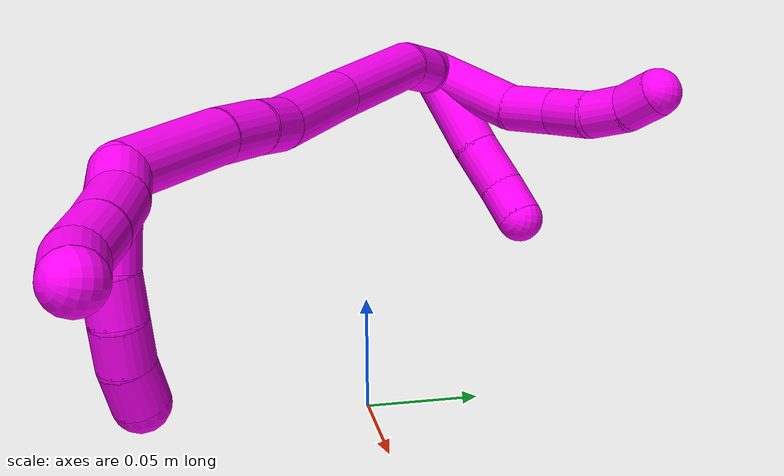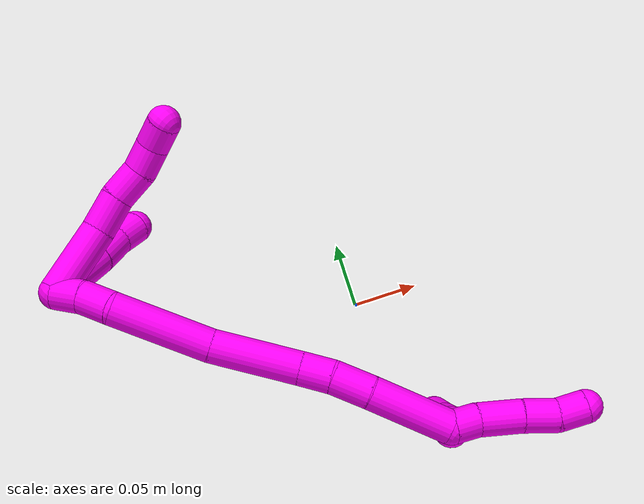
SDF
<sdf version="1.7">
 <world name="default">
  <model name="10">
   <static>0</static>
   <link name="10">
    <collision name="collision-cylinder-e_1_2_8">
     <pose>0.020106 0.017612 -0.006017 -1.90001 0.823985 -1.09709</pose>
     <geometry><cylinder><radius>0.0125</radius><length>0.054795</length></cylinder></geometry>
     <surface>
      <friction><ode><mu>1.16</mu><mu2>1.16</mu2><slip1>0</slip1><slip2>0</slip2></ode></friction>
      <contact><ode><kp>1e+06</kp><kd>1</kd><max_vel>0</max_vel><min_depth>0.001</min_depth></ode></contact>
     </surface>
    </collision>
    <visual name="visual-cylinder-e_1_2_8">
     <pose>0.020106 0.017612 -0.006017 -1.90001 0.823985 -1.09709</pose>
     <geometry><cylinder><radius>0.0125</radius><length>0.054795</length></cylinder></geometry>
     <material><ambient>1 0 0.964706 1</ambient></material>
    </visual>
    <collision name="collision-cylinder-e_2_8_9">
     <pose>0.047354 0.04717 -0.01429 -1.75741 0.53114 -0.634164</pose>
     <geometry><cylinder><radius>0.0125</radius><length>0.0282</length></cylinder></geometry>
     <surface>
      <friction><ode><mu>1.16</mu><mu2>1.16</mu2><slip1>0</slip1><slip2>0</slip2></ode></friction>
      <contact><ode><kp>1e+06</kp><kd>1</kd><max_vel>0</max_vel><min_depth>0.001</min_depth></ode></contact>
     </surface>
    </collision>
    <visual name="visual-cylinder-e_2_8_9">
     <pose>0.047354 0.04717 -0.01429 -1.75741 0.53114 -0.634164</pose>
     <geometry><cylinder><radius>0.0125</radius><length>0.0282</length></cylinder></geometry>
     <material><ambient>1 0 0.964706 1</ambient></material>
    </visual>
    <collision name="collision-cylinder-e_3_9_10">
     <pose>0.061141 0.069664 -0.016053 -1.52416 0.561689 -0.537329</pose>
     <geometry><cylinder><radius>0.0125</radius><length>0.024952</length></cylinder></geometry>
     <surface>
      <friction><ode><mu>1.16</mu><mu2>1.16</mu2><slip1>0</slip1><slip2>0</slip2></ode></friction>
      <contact><ode><kp>1e+06</kp><kd>1</kd><max_vel>0</max_vel><min_depth>0.001</min_depth></ode></contact>
     </surface>
    </collision>
    <visual name="visual-cylinder-e_3_9_10">
     <pose>0.061141 0.069664 -0.016053 -1.52416 0.561689 -0.537329</pose>
     <geometry><cylinder><radius>0.0125</radius><length>0.024952</length></cylinder></geometry>
     <material><ambient>1 0 0.964706 1</ambient></material>
    </visual>
    <collision name="collision-cylinder-e_4_10_11">
     <pose>0.071048 0.090432 -0.016723 -1.68406 0.307112 -0.343342</pose>
     <geometry><cylinder><radius>0.0125</radius><length>0.021581</length></cylinder></geometry>
     <surface>
      <friction><ode><mu>1.16</mu><mu2>1.16</mu2><slip1>0</slip1><slip2>0</slip2></ode></friction>
      <contact><ode><kp>1e+06</kp><kd>1</kd><max_vel>0</max_vel><min_depth>0.001</min_depth></ode></contact>
     </surface>
    </collision>
    <visual name="visual-cylinder-e_4_10_11">
     <pose>0.071048 0.090432 -0.016723 -1.68406 0.307112 -0.343342</pose>
     <geometry><cylinder><radius>0.0125</radius><length>0.021581</length></cylinder></geometry>
     <material><ambient>1 0 0.964706 1</ambient></material>
    </visual>
    <collision name="collision-cylinder-e_5_11_6">
     <pose>0.075152 0.110852 -0.017809 -1.56328 0.082391 -0.081774</pose>
     <geometry><cylinder><radius>0.0125</radius><length>0.020471</length></cylinder></geometry>
     <surface>
      <friction><ode><mu>1.16</mu><mu2>1.16</mu2><slip1>0</slip1><slip2>0</slip2></ode></friction>
      <contact><ode><kp>1e+06</kp><kd>1</kd><max_vel>0</max_vel><min_depth>0.001</min_depth></ode></contact>
     </surface>
    </collision>
    <visual name="visual-cylinder-e_5_11_6">
     <pose>0.075152 0.110852 -0.017809 -1.56328 0.082391 -0.081774</pose>
     <geometry><cylinder><radius>0.0125</radius><length>0.020471</length></cylinder></geometry>
     <material><ambient>1 0 0.964706 1</ambient></material>
    </visual>
    <collision name="collision-cylinder-e_1_2_12">
     <pose>0.025018 0.002938 -0.004501 -2.56336 1.35916 -2.43609</pose>
     <geometry><cylinder><radius>0.0125</radius><length>0.051178</length></cylinder></geometry>
     <surface>
      <friction><ode><mu>1.16</mu><mu2>1.16</mu2><slip1>0</slip1><slip2>0</slip2></ode></friction>
      <contact><ode><kp>1e+06</kp><kd>1</kd><max_vel>0</max_vel><min_depth>0.001</min_depth></ode></contact>
     </surface>
    </collision>
    <visual name="visual-cylinder-e_1_2_12">
     <pose>0.025018 0.002938 -0.004501 -2.56336 1.35916 -2.43609</pose>
     <geometry><cylinder><radius>0.0125</radius><length>0.051178</length></cylinder></geometry>
     <material><ambient>1 0 0.964706 1</ambient></material>
    </visual>
    <collision name="collision-cylinder-e_2_12_13">
     <pose>0.063185 0.007741 -0.012322 -2.62967 1.28891 -2.47138</pose>
     <geometry><cylinder><radius>0.0125</radius><length>0.027377</length></cylinder></geometry>
     <surface>
      <friction><ode><mu>1.16</mu><mu2>1.16</mu2><slip1>0</slip1><slip2>0</slip2></ode></friction>
      <contact><ode><kp>1e+06</kp><kd>1</kd><max_vel>0</max_vel><min_depth>0.001</min_depth></ode></contact>
     </surface>
    </collision>
    <visual name="visual-cylinder-e_2_12_13">
     <pose>0.063185 0.007741 -0.012322 -2.62967 1.28891 -2.47138</pose>
     <geometry><cylinder><radius>0.0125</radius><length>0.027377</length></cylinder></geometry>
     <material><ambient>1 0 0.964706 1</ambient></material>
    </visual>
    <collision name="collision-cylinder-e_3_13_5">
     <pose>0.08678 0.011886 -0.016429 -1.9033 1.3439 -1.68051</pose>
     <geometry><cylinder><radius>0.0125</radius><length>0.021445</length></cylinder></geometry>
     <surface>
      <friction><ode><mu>1.16</mu><mu2>1.16</mu2><slip1>0</slip1><slip2>0</slip2></ode></friction>
      <contact><ode><kp>1e+06</kp><kd>1</kd><max_vel>0</max_vel><min_depth>0.001</min_depth></ode></contact>
     </surface>
    </collision>
    <visual name="visual-cylinder-e_3_13_5">
     <pose>0.08678 0.011886 -0.016429 -1.9033 1.3439 -1.68051</pose>
     <geometry><cylinder><radius>0.0125</radius><length>0.021445</length></cylinder></geometry>
     <material><ambient>1 0 0.964706 1</ambient></material>
    </visual>
    <collision name="collision-cylinder-e_1_2_14">
     <pose>0.003121 0.004285 0.009008 -0.44397 0.303264 -0.06895</pose>
     <geometry><cylinder><radius>0.0125</radius><length>0.020904</length></cylinder></geometry>
     <surface>
      <friction><ode><mu>1.16</mu><mu2>1.16</mu2><slip1>0</slip1><slip2>0</slip2></ode></friction>
      <contact><ode><kp>1e+06</kp><kd>1</kd><max_vel>0</max_vel><min_depth>0.001</min_depth></ode></contact>
     </surface>
    </collision>
    <visual name="visual-cylinder-e_1_2_14">
     <pose>0.003121 0.004285 0.009008 -0.44397 0.303264 -0.06895</pose>
     <geometry><cylinder><radius>0.0125</radius><length>0.020904</length></cylinder></geometry>
     <material><ambient>1 0 0.964706 1</ambient></material>
    </visual>
    <collision name="collision-cylinder-e_2_14_15">
     <pose>0.008433 0.01199 0.029403 -0.291836 0.182156 -0.026843</pose>
     <geometry><cylinder><radius>0.0125</radius><length>0.02418</length></cylinder></geometry>
     <surface>
      <friction><ode><mu>1.16</mu><mu2>1.16</mu2><slip1>0</slip1><slip2>0</slip2></ode></friction>
      <contact><ode><kp>1e+06</kp><kd>1</kd><max_vel>0</max_vel><min_depth>0.001</min_depth></ode></contact>
     </surface>
    </collision>
    <visual name="visual-cylinder-e_2_14_15">
     <pose>0.008433 0.01199 0.029403 -0.291836 0.182156 -0.026843</pose>
     <geometry><cylinder><radius>0.0125</radius><length>0.02418</length></cylinder></geometry>
     <material><ambient>1 0 0.964706 1</ambient></material>
    </visual>
    <collision name="collision-cylinder-e_3_15_16">
     <pose>0.026715 0.019289 0.074324 -0.115136 0.444839 -0.026067</pose>
     <geometry><cylinder><radius>0.0125</radius><length>0.074793</length></cylinder></geometry>
     <surface>
      <friction><ode><mu>1.16</mu><mu2>1.16</mu2><slip1>0</slip1><slip2>0</slip2></ode></friction>
      <contact><ode><kp>1e+06</kp><kd>1</kd><max_vel>0</max_vel><min_depth>0.001</min_depth></ode></contact>
     </surface>
    </collision>
    <visual name="visual-cylinder-e_3_15_16">
     <pose>0.026715 0.019289 0.074324 -0.115136 0.444839 -0.026067</pose>
     <geometry><cylinder><radius>0.0125</radius><length>0.074793</length></cylinder></geometry>
     <material><ambient>1 0 0.964706 1</ambient></material>
    </visual>
    <collision name="collision-cylinder-e_4_16_17">
     <pose>0.057734 0.030355 0.136171 -0.248639 0.472405 -0.060138</pose>
     <geometry><cylinder><radius>0.0125</radius><length>0.065608</length></cylinder></geometry>
     <surface>
      <friction><ode><mu>1.16</mu><mu2>1.16</mu2><slip1>0</slip1><slip2>0</slip2></ode></friction>
      <contact><ode><kp>1e+06</kp><kd>1</kd><max_vel>0</max_vel><min_depth>0.001</min_depth></ode></contact>
     </surface>
    </collision>
    <visual name="visual-cylinder-e_4_16_17">
     <pose>0.057734 0.030355 0.136171 -0.248639 0.472405 -0.060138</pose>
     <geometry><cylinder><radius>0.0125</radius><length>0.065608</length></cylinder></geometry>
     <material><ambient>1 0 0.964706 1</ambient></material>
    </visual>
    <collision name="collision-cylinder-e_5_17_18">
     <pose>0.076626 0.041138 0.17522 -0.323003 0.336844 -0.05539</pose>
     <geometry><cylinder><radius>0.0125</radius><length>0.023993</length></cylinder></geometry>
     <surface>
      <friction><ode><mu>1.16</mu><mu2>1.16</mu2><slip1>0</slip1><slip2>0</slip2></ode></friction>
      <contact><ode><kp>1e+06</kp><kd>1</kd><max_vel>0</max_vel><min_depth>0.001</min_depth></ode></contact>
     </surface>
    </collision>
    <visual name="visual-cylinder-e_5_17_18">
     <pose>0.076626 0.041138 0.17522 -0.323003 0.336844 -0.05539</pose>
     <geometry><cylinder><radius>0.0125</radius><length>0.023993</length></cylinder></geometry>
     <material><ambient>1 0 0.964706 1</ambient></material>
    </visual>
    <collision name="collision-cylinder-e_6_18_19">
     <pose>0.085442 0.046879 0.199426 -0.158109 0.341707 -0.027335</pose>
     <geometry><cylinder><radius>0.0125</radius><length>0.028951</length></cylinder></geometry>
     <surface>
      <friction><ode><mu>1.16</mu><mu2>1.16</mu2><slip1>0</slip1><slip2>0</slip2></ode></friction>
      <contact><ode><kp>1e+06</kp><kd>1</kd><max_vel>0</max_vel><min_depth>0.001</min_depth></ode></contact>
     </surface>
    </collision>
    <visual name="visual-cylinder-e_6_18_19">
     <pose>0.085442 0.046879 0.199426 -0.158109 0.341707 -0.027335</pose>
     <geometry><cylinder><radius>0.0125</radius><length>0.028951</length></cylinder></geometry>
     <material><ambient>1 0 0.964706 1</ambient></material>
    </visual>
    <collision name="collision-cylinder-e_7_19_1">
     <pose>0.10236 0.05139 0.241117 -0.083538 0.402814 -0.017066</pose>
     <geometry><cylinder><radius>0.0125</radius><length>0.061571</length></cylinder></geometry>
     <surface>
      <friction><ode><mu>1.16</mu><mu2>1.16</mu2><slip1>0</slip1><slip2>0</slip2></ode></friction>
      <contact><ode><kp>1e+06</kp><kd>1</kd><max_vel>0</max_vel><min_depth>0.001</min_depth></ode></contact>
     </surface>
    </collision>
    <visual name="visual-cylinder-e_7_19_1">
     <pose>0.10236 0.05139 0.241117 -0.083538 0.402814 -0.017066</pose>
     <geometry><cylinder><radius>0.0125</radius><length>0.061571</length></cylinder></geometry>
     <material><ambient>1 0 0.964706 1</ambient></material>
    </visual>
    <collision name="collision-cylinder-e_1_1_20">
     <pose>0.122603 0.057551 0.27398 -0.685983 0.937839 -0.357954</pose>
     <geometry><cylinder><radius>0.0125</radius><length>0.020276</length></cylinder></geometry>
     <surface>
      <friction><ode><mu>1.16</mu><mu2>1.16</mu2><slip1>0</slip1><slip2>0</slip2></ode></friction>
      <contact><ode><kp>1e+06</kp><kd>1</kd><max_vel>0</max_vel><min_depth>0.001</min_depth></ode></contact>
     </surface>
    </collision>
    <visual name="visual-cylinder-e_1_1_20">
     <pose>0.122603 0.057551 0.27398 -0.685983 0.937839 -0.357954</pose>
     <geometry><cylinder><radius>0.0125</radius><length>0.020276</length></cylinder></geometry>
     <material><ambient>1 0 0.964706 1</ambient></material>
    </visual>
    <collision name="collision-cylinder-e_2_20_21">
     <pose>0.140982 0.068263 0.2894 -0.570215 0.672829 -0.20428</pose>
     <geometry><cylinder><radius>0.0125</radius><length>0.03275</length></cylinder></geometry>
     <surface>
      <friction><ode><mu>1.16</mu><mu2>1.16</mu2><slip1>0</slip1><slip2>0</slip2></ode></friction>
      <contact><ode><kp>1e+06</kp><kd>1</kd><max_vel>0</max_vel><min_depth>0.001</min_depth></ode></contact>
     </surface>
    </collision>
    <visual name="visual-cylinder-e_2_20_21">
     <pose>0.140982 0.068263 0.2894 -0.570215 0.672829 -0.20428</pose>
     <geometry><cylinder><radius>0.0125</radius><length>0.03275</length></cylinder></geometry>
     <material><ambient>1 0 0.964706 1</ambient></material>
    </visual>
    <collision name="collision-cylinder-e_3_21_22">
     <pose>0.159009 0.079852 0.309235 -0.476672 0.654709 -0.164628</pose>
     <geometry><cylinder><radius>0.0125</radius><length>0.025694</length></cylinder></geometry>
     <surface>
      <friction><ode><mu>1.16</mu><mu2>1.16</mu2><slip1>0</slip1><slip2>0</slip2></ode></friction>
      <contact><ode><kp>1e+06</kp><kd>1</kd><max_vel>0</max_vel><min_depth>0.001</min_depth></ode></contact>
     </surface>
    </collision>
    <visual name="visual-cylinder-e_3_21_22">
     <pose>0.159009 0.079852 0.309235 -0.476672 0.654709 -0.164628</pose>
     <geometry><cylinder><radius>0.0125</radius><length>0.025694</length></cylinder></geometry>
     <material><ambient>1 0 0.964706 1</ambient></material>
    </visual>
    <collision name="collision-cylinder-e_4_22_4">
     <pose>0.173568 0.090766 0.323668 -0.859303 0.685481 -0.324125</pose>
     <geometry><cylinder><radius>0.0125</radius><length>0.02128</length></cylinder></geometry>
     <surface>
      <friction><ode><mu>1.16</mu><mu2>1.16</mu2><slip1>0</slip1><slip2>0</slip2></ode></friction>
      <contact><ode><kp>1e+06</kp><kd>1</kd><max_vel>0</max_vel><min_depth>0.001</min_depth></ode></contact>
     </surface>
    </collision>
    <visual name="visual-cylinder-e_4_22_4">
     <pose>0.173568 0.090766 0.323668 -0.859303 0.685481 -0.324125</pose>
     <geometry><cylinder><radius>0.0125</radius><length>0.02128</length></cylinder></geometry>
     <material><ambient>1 0 0.964706 1</ambient></material>
    </visual>
    <collision name="collision-cylinder-e_1_1_23">
     <pose>0.121915 0.047133 0.268973 1.62615 0.846036 0.888254</pose>
     <geometry><cylinder><radius>0.0125</radius><length>0.02</length></cylinder></geometry>
     <surface>
      <friction><ode><mu>1.16</mu><mu2>1.16</mu2><slip1>0</slip1><slip2>0</slip2></ode></friction>
      <contact><ode><kp>1e+06</kp><kd>1</kd><max_vel>0</max_vel><min_depth>0.001</min_depth></ode></contact>
     </surface>
    </collision>
    <visual name="visual-cylinder-e_1_1_23">
     <pose>0.121915 0.047133 0.268973 1.62615 0.846036 0.888254</pose>
     <geometry><cylinder><radius>0.0125</radius><length>0.02</length></cylinder></geometry>
     <material><ambient>1 0 0.964706 1</ambient></material>
    </visual>
    <collision name="collision-cylinder-e_2_23_24">
     <pose>0.138259 0.035932 0.267859 1.73237 1.08797 1.23672</pose>
     <geometry><cylinder><radius>0.0125</radius><length>0.02</length></cylinder></geometry>
     <surface>
      <friction><ode><mu>1.16</mu><mu2>1.16</mu2><slip1>0</slip1><slip2>0</slip2></ode></friction>
      <contact><ode><kp>1e+06</kp><kd>1</kd><max_vel>0</max_vel><min_depth>0.001</min_depth></ode></contact>
     </surface>
    </collision>
    <visual name="visual-cylinder-e_2_23_24">
     <pose>0.138259 0.035932 0.267859 1.73237 1.08797 1.23672</pose>
     <geometry><cylinder><radius>0.0125</radius><length>0.02</length></cylinder></geometry>
     <material><ambient>1 0 0.964706 1</ambient></material>
    </visual>
    <collision name="collision-cylinder-e_3_24_25">
     <pose>0.15507 0.026285 0.263783 2.1523 0.919787 1.48569</pose>
     <geometry><cylinder><radius>0.0125</radius><length>0.02</length></cylinder></geometry>
     <surface>
      <friction><ode><mu>1.16</mu><mu2>1.16</mu2><slip1>0</slip1><slip2>0</slip2></ode></friction>
      <contact><ode><kp>1e+06</kp><kd>1</kd><max_vel>0</max_vel><min_depth>0.001</min_depth></ode></contact>
     </surface>
    </collision>
    <visual name="visual-cylinder-e_3_24_25">
     <pose>0.15507 0.026285 0.263783 2.1523 0.919787 1.48569</pose>
     <geometry><cylinder><radius>0.0125</radius><length>0.02</length></cylinder></geometry>
     <material><ambient>1 0 0.964706 1</ambient></material>
    </visual>
    <collision name="collision-cylinder-e_4_25_26">
     <pose>0.169895 0.015236 0.256334 2.17377 0.757297 1.29587</pose>
     <geometry><cylinder><radius>0.0125</radius><length>0.02</length></cylinder></geometry>
     <surface>
      <friction><ode><mu>1.16</mu><mu2>1.16</mu2><slip1>0</slip1><slip2>0</slip2></ode></friction>
      <contact><ode><kp>1e+06</kp><kd>1</kd><max_vel>0</max_vel><min_depth>0.001</min_depth></ode></contact>
     </surface>
    </collision>
    <visual name="visual-cylinder-e_4_25_26">
     <pose>0.169895 0.015236 0.256334 2.17377 0.757297 1.29587</pose>
     <geometry><cylinder><radius>0.0125</radius><length>0.02</length></cylinder></geometry>
     <material><ambient>1 0 0.964706 1</ambient></material>
    </visual>
    <collision name="collision-cylinder-e_5_26_3">
     <pose>0.183071 0.003858 0.246632 2.37337 0.682418 1.44168</pose>
     <geometry><cylinder><radius>0.0125</radius><length>0.02</length></cylinder></geometry>
     <surface>
      <friction><ode><mu>1.16</mu><mu2>1.16</mu2><slip1>0</slip1><slip2>0</slip2></ode></friction>
      <contact><ode><kp>1e+06</kp><kd>1</kd><max_vel>0</max_vel><min_depth>0.001</min_depth></ode></contact>
     </surface>
    </collision>
    <visual name="visual-cylinder-e_5_26_3">
     <pose>0.183071 0.003858 0.246632 2.37337 0.682418 1.44168</pose>
     <geometry><cylinder><radius>0.0125</radius><length>0.02</length></cylinder></geometry>
     <material><ambient>1 0 0.964706 1</ambient></material>
    </visual>
    <collision name="collision-sphere-3">
     <pose>0.189378 -0.001534 0.241051 0 -0 0</pose>
     <geometry><sphere><radius>0.0125</radius></sphere></geometry>
     <surface>
      <friction><ode><mu>1.16</mu><mu2>1.16</mu2><slip1>0</slip1><slip2>0</slip2></ode></friction>
      <contact><ode><kp>1e+06</kp><kd>1</kd><max_vel>0</max_vel><min_depth>0.001</min_depth></ode></contact>
     </surface>
    </collision>
    <visual name="visual-sphere-3">
     <pose>0.189378 -0.001534 0.241051 0 -0 0</pose>
     <geometry><sphere><radius>0.0125</radius></sphere></geometry>
     <material><ambient>1 0 0.964706 1</ambient></material>
    </visual>
    <collision name="collision-sphere-26">
     <pose>0.176764 0.009251 0.252213 0 -0 0</pose>
     <geometry><sphere><radius>0.0125</radius></sphere></geometry>
     <surface>
      <friction><ode><mu>1.16</mu><mu2>1.16</mu2><slip1>0</slip1><slip2>0</slip2></ode></friction>
      <contact><ode><kp>1e+06</kp><kd>1</kd><max_vel>0</max_vel><min_depth>0.001</min_depth></ode></contact>
     </surface>
    </collision>
    <visual name="visual-sphere-26">
     <pose>0.176764 0.009251 0.252213 0 -0 0</pose>
     <geometry><sphere><radius>0.0125</radius></sphere></geometry>
     <material><ambient>1 0 0.964706 1</ambient></material>
    </visual>
    <collision name="collision-sphere-25">
     <pose>0.163025 0.021222 0.260455 0 -0 0</pose>
     <geometry><sphere><radius>0.0125</radius></sphere></geometry>
     <surface>
      <friction><ode><mu>1.16</mu><mu2>1.16</mu2><slip1>0</slip1><slip2>0</slip2></ode></friction>
      <contact><ode><kp>1e+06</kp><kd>1</kd><max_vel>0</max_vel><min_depth>0.001</min_depth></ode></contact>
     </surface>
    </collision>
    <visual name="visual-sphere-25">
     <pose>0.163025 0.021222 0.260455 0 -0 0</pose>
     <geometry><sphere><radius>0.0125</radius></sphere></geometry>
     <material><ambient>1 0 0.964706 1</ambient></material>
    </visual>
    <collision name="collision-sphere-24">
     <pose>0.147116 0.031349 0.267112 0 -0 0</pose>
     <geometry><sphere><radius>0.0125</radius></sphere></geometry>
     <surface>
      <friction><ode><mu>1.16</mu><mu2>1.16</mu2><slip1>0</slip1><slip2>0</slip2></ode></friction>
      <contact><ode><kp>1e+06</kp><kd>1</kd><max_vel>0</max_vel><min_depth>0.001</min_depth></ode></contact>
     </surface>
    </collision>
    <visual name="visual-sphere-24">
     <pose>0.147116 0.031349 0.267112 0 -0 0</pose>
     <geometry><sphere><radius>0.0125</radius></sphere></geometry>
     <material><ambient>1 0 0.964706 1</ambient></material>
    </visual>
    <collision name="collision-sphere-23">
     <pose>0.129402 0.040514 0.268606 0 -0 0</pose>
     <geometry><sphere><radius>0.0125</radius></sphere></geometry>
     <surface>
      <friction><ode><mu>1.16</mu><mu2>1.16</mu2><slip1>0</slip1><slip2>0</slip2></ode></friction>
      <contact><ode><kp>1e+06</kp><kd>1</kd><max_vel>0</max_vel><min_depth>0.001</min_depth></ode></contact>
     </surface>
    </collision>
    <visual name="visual-sphere-23">
     <pose>0.129402 0.040514 0.268606 0 -0 0</pose>
     <geometry><sphere><radius>0.0125</radius></sphere></geometry>
     <material><ambient>1 0 0.964706 1</ambient></material>
    </visual>
    <collision name="collision-sphere-4">
     <pose>0.180304 0.097004 0.329046 0 -0 0</pose>
     <geometry><sphere><radius>0.0125</radius></sphere></geometry>
     <surface>
      <friction><ode><mu>1.16</mu><mu2>1.16</mu2><slip1>0</slip1><slip2>0</slip2></ode></friction>
      <contact><ode><kp>1e+06</kp><kd>1</kd><max_vel>0</max_vel><min_depth>0.001</min_depth></ode></contact>
     </surface>
    </collision>
    <visual name="visual-sphere-4">
     <pose>0.180304 0.097004 0.329046 0 -0 0</pose>
     <geometry><sphere><radius>0.0125</radius></sphere></geometry>
     <material><ambient>1 0 0.964706 1</ambient></material>
    </visual>
    <collision name="collision-sphere-22">
     <pose>0.166832 0.084527 0.31829 0 -0 0</pose>
     <geometry><sphere><radius>0.0125</radius></sphere></geometry>
     <surface>
      <friction><ode><mu>1.16</mu><mu2>1.16</mu2><slip1>0</slip1><slip2>0</slip2></ode></friction>
      <contact><ode><kp>1e+06</kp><kd>1</kd><max_vel>0</max_vel><min_depth>0.001</min_depth></ode></contact>
     </surface>
    </collision>
    <visual name="visual-sphere-22">
     <pose>0.166832 0.084527 0.31829 0 -0 0</pose>
     <geometry><sphere><radius>0.0125</radius></sphere></geometry>
     <material><ambient>1 0 0.964706 1</ambient></material>
    </visual>
    <collision name="collision-sphere-21">
     <pose>0.151186 0.075176 0.30018 0 -0 0</pose>
     <geometry><sphere><radius>0.0125</radius></sphere></geometry>
     <surface>
      <friction><ode><mu>1.16</mu><mu2>1.16</mu2><slip1>0</slip1><slip2>0</slip2></ode></friction>
      <contact><ode><kp>1e+06</kp><kd>1</kd><max_vel>0</max_vel><min_depth>0.001</min_depth></ode></contact>
     </surface>
    </collision>
    <visual name="visual-sphere-21">
     <pose>0.151186 0.075176 0.30018 0 -0 0</pose>
     <geometry><sphere><radius>0.0125</radius></sphere></geometry>
     <material><ambient>1 0 0.964706 1</ambient></material>
    </visual>
    <collision name="collision-sphere-20">
     <pose>0.130777 0.06135 0.27862 0 -0 0</pose>
     <geometry><sphere><radius>0.0125</radius></sphere></geometry>
     <surface>
      <friction><ode><mu>1.16</mu><mu2>1.16</mu2><slip1>0</slip1><slip2>0</slip2></ode></friction>
      <contact><ode><kp>1e+06</kp><kd>1</kd><max_vel>0</max_vel><min_depth>0.001</min_depth></ode></contact>
     </surface>
    </collision>
    <visual name="visual-sphere-20">
     <pose>0.130777 0.06135 0.27862 0 -0 0</pose>
     <geometry><sphere><radius>0.0125</radius></sphere></geometry>
     <material><ambient>1 0 0.964706 1</ambient></material>
    </visual>
    <collision name="collision-sphere-6">
     <pose>0.075994 0.121053 -0.017732 0 -0 0</pose>
     <geometry><sphere><radius>0.0125</radius></sphere></geometry>
     <surface>
      <friction><ode><mu>1.16</mu><mu2>1.16</mu2><slip1>0</slip1><slip2>0</slip2></ode></friction>
      <contact><ode><kp>1e+06</kp><kd>1</kd><max_vel>0</max_vel><min_depth>0.001</min_depth></ode></contact>
     </surface>
    </collision>
    <visual name="visual-sphere-6">
     <pose>0.075994 0.121053 -0.017732 0 -0 0</pose>
     <geometry><sphere><radius>0.0125</radius></sphere></geometry>
     <material><ambient>1 0 0.964706 1</ambient></material>
    </visual>
    <collision name="collision-sphere-11">
     <pose>0.07431 0.100651 -0.017886 0 -0 0</pose>
     <geometry><sphere><radius>0.0125</radius></sphere></geometry>
     <surface>
      <friction><ode><mu>1.16</mu><mu2>1.16</mu2><slip1>0</slip1><slip2>0</slip2></ode></friction>
      <contact><ode><kp>1e+06</kp><kd>1</kd><max_vel>0</max_vel><min_depth>0.001</min_depth></ode></contact>
     </surface>
    </collision>
    <visual name="visual-sphere-11">
     <pose>0.07431 0.100651 -0.017886 0 -0 0</pose>
     <geometry><sphere><radius>0.0125</radius></sphere></geometry>
     <material><ambient>1 0 0.964706 1</ambient></material>
    </visual>
    <collision name="collision-sphere-10">
     <pose>0.067786 0.080212 -0.015561 0 -0 0</pose>
     <geometry><sphere><radius>0.0125</radius></sphere></geometry>
     <surface>
      <friction><ode><mu>1.16</mu><mu2>1.16</mu2><slip1>0</slip1><slip2>0</slip2></ode></friction>
      <contact><ode><kp>1e+06</kp><kd>1</kd><max_vel>0</max_vel><min_depth>0.001</min_depth></ode></contact>
     </surface>
    </collision>
    <visual name="visual-sphere-10">
     <pose>0.067786 0.080212 -0.015561 0 -0 0</pose>
     <geometry><sphere><radius>0.0125</radius></sphere></geometry>
     <material><ambient>1 0 0.964706 1</ambient></material>
    </visual>
    <collision name="collision-sphere-9">
     <pose>0.054496 0.059116 -0.016545 0 -0 0</pose>
     <geometry><sphere><radius>0.0125</radius></sphere></geometry>
     <surface>
      <friction><ode><mu>1.16</mu><mu2>1.16</mu2><slip1>0</slip1><slip2>0</slip2></ode></friction>
      <contact><ode><kp>1e+06</kp><kd>1</kd><max_vel>0</max_vel><min_depth>0.001</min_depth></ode></contact>
     </surface>
    </collision>
    <visual name="visual-sphere-9">
     <pose>0.054496 0.059116 -0.016545 0 -0 0</pose>
     <geometry><sphere><radius>0.0125</radius></sphere></geometry>
     <material><ambient>1 0 0.964706 1</ambient></material>
    </visual>
    <collision name="collision-sphere-2">
     <geometry><sphere><radius>0.0125</radius></sphere></geometry>
     <surface>
      <friction><ode><mu>1.16</mu><mu2>1.16</mu2><slip1>0</slip1><slip2>0</slip2></ode></friction>
      <contact><ode><kp>1e+06</kp><kd>1</kd><max_vel>0</max_vel><min_depth>0.001</min_depth></ode></contact>
     </surface>
    </collision>
    <visual name="visual-sphere-2">
     <geometry><sphere><radius>0.0125</radius></sphere></geometry>
     <material><ambient>1 0 0.964706 1</ambient></material>
    </visual>
    <collision name="collision-sphere-19">
     <pose>0.090292 0.049026 0.212894 0 -0 0</pose>
     <geometry><sphere><radius>0.0125</radius></sphere></geometry>
     <surface>
      <friction><ode><mu>1.16</mu><mu2>1.16</mu2><slip1>0</slip1><slip2>0</slip2></ode></friction>
      <contact><ode><kp>1e+06</kp><kd>1</kd><max_vel>0</max_vel><min_depth>0.001</min_depth></ode></contact>
     </surface>
    </collision>
    <visual name="visual-sphere-19">
     <pose>0.090292 0.049026 0.212894 0 -0 0</pose>
     <geometry><sphere><radius>0.0125</radius></sphere></geometry>
     <material><ambient>1 0 0.964706 1</ambient></material>
    </visual>
    <collision name="collision-sphere-8">
     <pose>0.040212 0.035223 -0.012034 0 -0 0</pose>
     <geometry><sphere><radius>0.0125</radius></sphere></geometry>
     <surface>
      <friction><ode><mu>1.16</mu><mu2>1.16</mu2><slip1>0</slip1><slip2>0</slip2></ode></friction>
      <contact><ode><kp>1e+06</kp><kd>1</kd><max_vel>0</max_vel><min_depth>0.001</min_depth></ode></contact>
     </surface>
    </collision>
    <visual name="visual-sphere-8">
     <pose>0.040212 0.035223 -0.012034 0 -0 0</pose>
     <geometry><sphere><radius>0.0125</radius></sphere></geometry>
     <material><ambient>1 0 0.964706 1</ambient></material>
    </visual>
    <collision name="collision-sphere-12">
     <pose>0.050036 0.005876 -0.009003 0 -0 0</pose>
     <geometry><sphere><radius>0.0125</radius></sphere></geometry>
     <surface>
      <friction><ode><mu>1.16</mu><mu2>1.16</mu2><slip1>0</slip1><slip2>0</slip2></ode></friction>
      <contact><ode><kp>1e+06</kp><kd>1</kd><max_vel>0</max_vel><min_depth>0.001</min_depth></ode></contact>
     </surface>
    </collision>
    <visual name="visual-sphere-12">
     <pose>0.050036 0.005876 -0.009003 0 -0 0</pose>
     <geometry><sphere><radius>0.0125</radius></sphere></geometry>
     <material><ambient>1 0 0.964706 1</ambient></material>
    </visual>
    <collision name="collision-sphere-13">
     <pose>0.076333 0.009606 -0.015642 0 -0 0</pose>
     <geometry><sphere><radius>0.0125</radius></sphere></geometry>
     <surface>
      <friction><ode><mu>1.16</mu><mu2>1.16</mu2><slip1>0</slip1><slip2>0</slip2></ode></friction>
      <contact><ode><kp>1e+06</kp><kd>1</kd><max_vel>0</max_vel><min_depth>0.001</min_depth></ode></contact>
     </surface>
    </collision>
    <visual name="visual-sphere-13">
     <pose>0.076333 0.009606 -0.015642 0 -0 0</pose>
     <geometry><sphere><radius>0.0125</radius></sphere></geometry>
     <material><ambient>1 0 0.964706 1</ambient></material>
    </visual>
    <collision name="collision-sphere-5">
     <pose>0.097228 0.014166 -0.017217 0 -0 0</pose>
     <geometry><sphere><radius>0.0125</radius></sphere></geometry>
     <surface>
      <friction><ode><mu>1.16</mu><mu2>1.16</mu2><slip1>0</slip1><slip2>0</slip2></ode></friction>
      <contact><ode><kp>1e+06</kp><kd>1</kd><max_vel>0</max_vel><min_depth>0.001</min_depth></ode></contact>
     </surface>
    </collision>
    <visual name="visual-sphere-5">
     <pose>0.097228 0.014166 -0.017217 0 -0 0</pose>
     <geometry><sphere><radius>0.0125</radius></sphere></geometry>
     <material><ambient>1 0 0.964706 1</ambient></material>
    </visual>
    <collision name="collision-sphere-14">
     <pose>0.006243 0.008569 0.018016 0 -0 0</pose>
     <geometry><sphere><radius>0.0125</radius></sphere></geometry>
     <surface>
      <friction><ode><mu>1.16</mu><mu2>1.16</mu2><slip1>0</slip1><slip2>0</slip2></ode></friction>
      <contact><ode><kp>1e+06</kp><kd>1</kd><max_vel>0</max_vel><min_depth>0.001</min_depth></ode></contact>
     </surface>
    </collision>
    <visual name="visual-sphere-14">
     <pose>0.006243 0.008569 0.018016 0 -0 0</pose>
     <geometry><sphere><radius>0.0125</radius></sphere></geometry>
     <material><ambient>1 0 0.964706 1</ambient></material>
    </visual>
    <collision name="collision-sphere-15">
     <pose>0.010623 0.015411 0.04079 0 -0 0</pose>
     <geometry><sphere><radius>0.0125</radius></sphere></geometry>
     <surface>
      <friction><ode><mu>1.16</mu><mu2>1.16</mu2><slip1>0</slip1><slip2>0</slip2></ode></friction>
      <contact><ode><kp>1e+06</kp><kd>1</kd><max_vel>0</max_vel><min_depth>0.001</min_depth></ode></contact>
     </surface>
    </collision>
    <visual name="visual-sphere-15">
     <pose>0.010623 0.015411 0.04079 0 -0 0</pose>
     <geometry><sphere><radius>0.0125</radius></sphere></geometry>
     <material><ambient>1 0 0.964706 1</ambient></material>
    </visual>
    <collision name="collision-sphere-16">
     <pose>0.042807 0.023167 0.107858 0 -0 0</pose>
     <geometry><sphere><radius>0.0125</radius></sphere></geometry>
     <surface>
      <friction><ode><mu>1.16</mu><mu2>1.16</mu2><slip1>0</slip1><slip2>0</slip2></ode></friction>
      <contact><ode><kp>1e+06</kp><kd>1</kd><max_vel>0</max_vel><min_depth>0.001</min_depth></ode></contact>
     </surface>
    </collision>
    <visual name="visual-sphere-16">
     <pose>0.042807 0.023167 0.107858 0 -0 0</pose>
     <geometry><sphere><radius>0.0125</radius></sphere></geometry>
     <material><ambient>1 0 0.964706 1</ambient></material>
    </visual>
    <collision name="collision-sphere-17">
     <pose>0.072661 0.037544 0.164484 0 -0 0</pose>
     <geometry><sphere><radius>0.0125</radius></sphere></geometry>
     <surface>
      <friction><ode><mu>1.16</mu><mu2>1.16</mu2><slip1>0</slip1><slip2>0</slip2></ode></friction>
      <contact><ode><kp>1e+06</kp><kd>1</kd><max_vel>0</max_vel><min_depth>0.001</min_depth></ode></contact>
     </surface>
    </collision>
    <visual name="visual-sphere-17">
     <pose>0.072661 0.037544 0.164484 0 -0 0</pose>
     <geometry><sphere><radius>0.0125</radius></sphere></geometry>
     <material><ambient>1 0 0.964706 1</ambient></material>
    </visual>
    <collision name="collision-sphere-18">
     <pose>0.080591 0.044732 0.185957 0 -0 0</pose>
     <geometry><sphere><radius>0.0125</radius></sphere></geometry>
     <surface>
      <friction><ode><mu>1.16</mu><mu2>1.16</mu2><slip1>0</slip1><slip2>0</slip2></ode></friction>
      <contact><ode><kp>1e+06</kp><kd>1</kd><max_vel>0</max_vel><min_depth>0.001</min_depth></ode></contact>
     </surface>
    </collision>
    <visual name="visual-sphere-18">
     <pose>0.080591 0.044732 0.185957 0 -0 0</pose>
     <geometry><sphere><radius>0.0125</radius></sphere></geometry>
     <material><ambient>1 0 0.964706 1</ambient></material>
    </visual>
    <collision name="collision-sphere-1">
     <pose>0.114429 0.053753 0.269339 0 -0 0</pose>
     <geometry><sphere><radius>0.0125</radius></sphere></geometry>
     <surface>
      <friction><ode><mu>1.16</mu><mu2>1.16</mu2><slip1>0</slip1><slip2>0</slip2></ode></friction>
      <contact><ode><kp>1e+06</kp><kd>1</kd><max_vel>0</max_vel><min_depth>0.001</min_depth></ode></contact>
     </surface>
    </collision>
    <visual name="visual-sphere-1">
     <pose>0.114429 0.053753 0.269339 0 -0 0</pose>
     <geometry><sphere><radius>0.0125</radius></sphere></geometry>
     <material><ambient>1 0 0.964706 1</ambient></material>
    </visual>
    <inertial>
     <pose>0.078429 0.037531 0.124499 0 -0 0</pose>
     <mass>0.75</mass>
     <inertia>
      <ixx>0.000121</ixx>
      <ixy>0</ixy>
      <ixz>0</ixz>
      <iyy>0.00013</iyy>
      <iyz>0</iyz>
      <izz>-9.6e-05</izz>
     </inertia>
    </inertial>
   </link>
   <pose>-0.204525 0.076013 0.110335 1.15202 0.889018 0.212572</pose>
  </model>
 </world>
</sdf>
